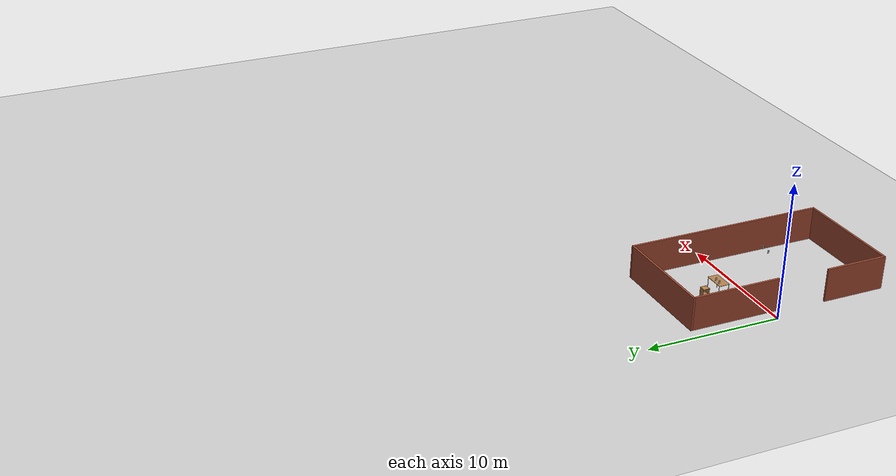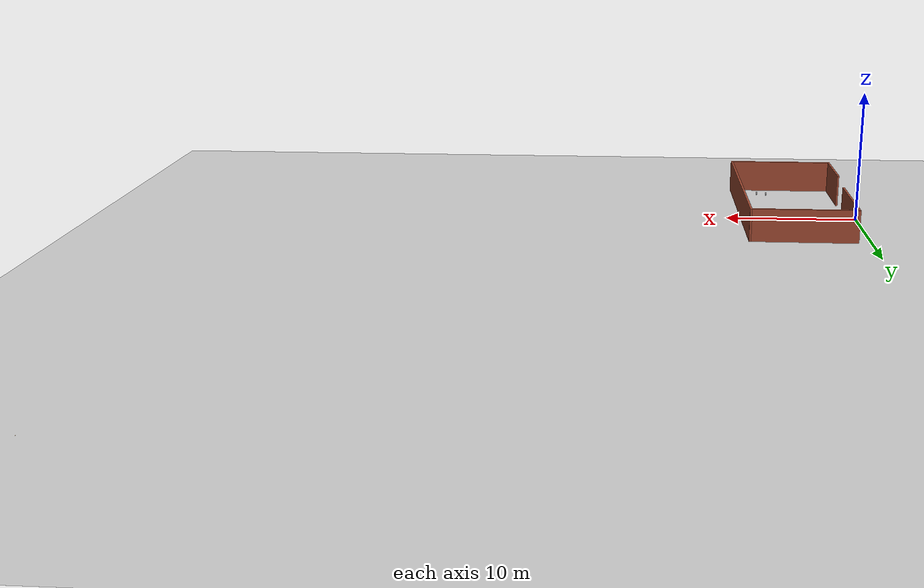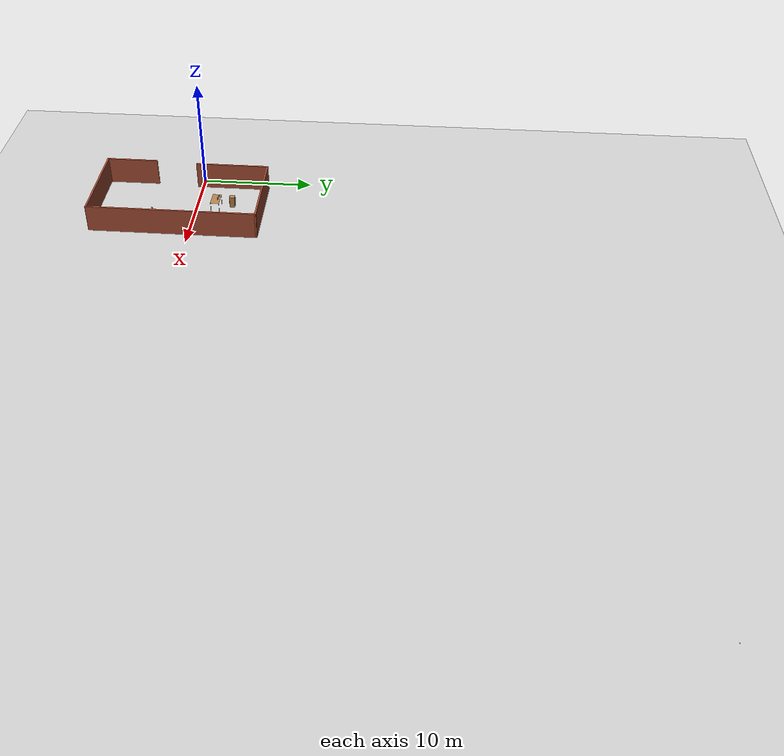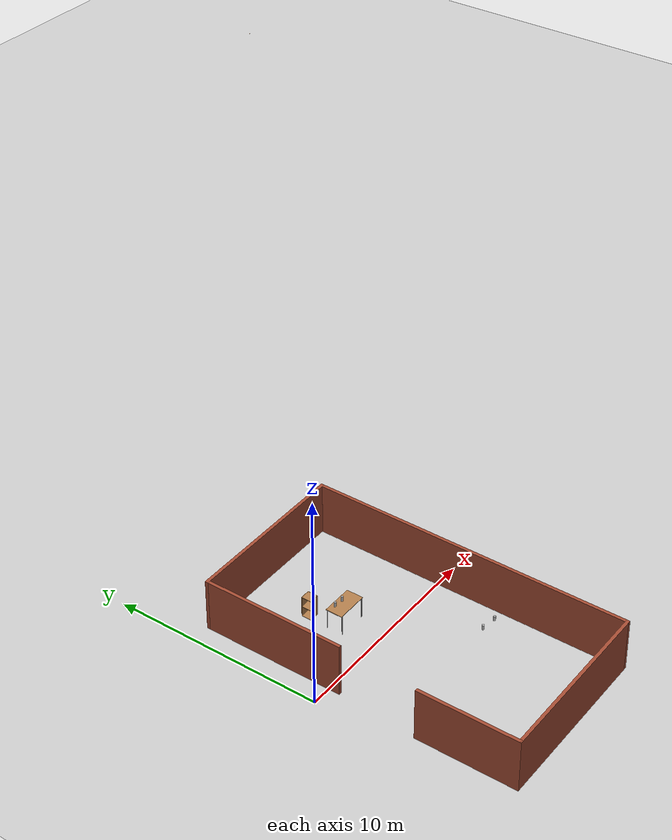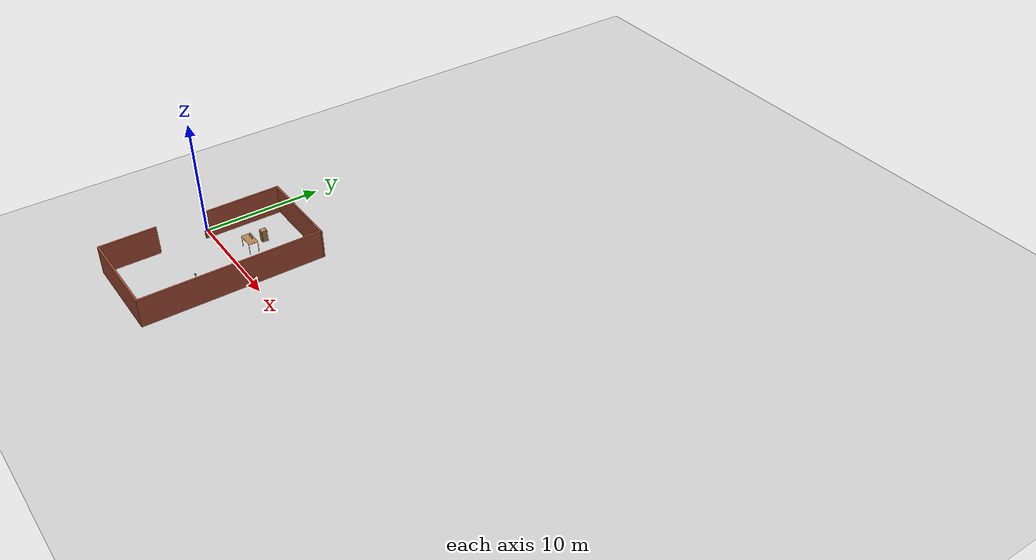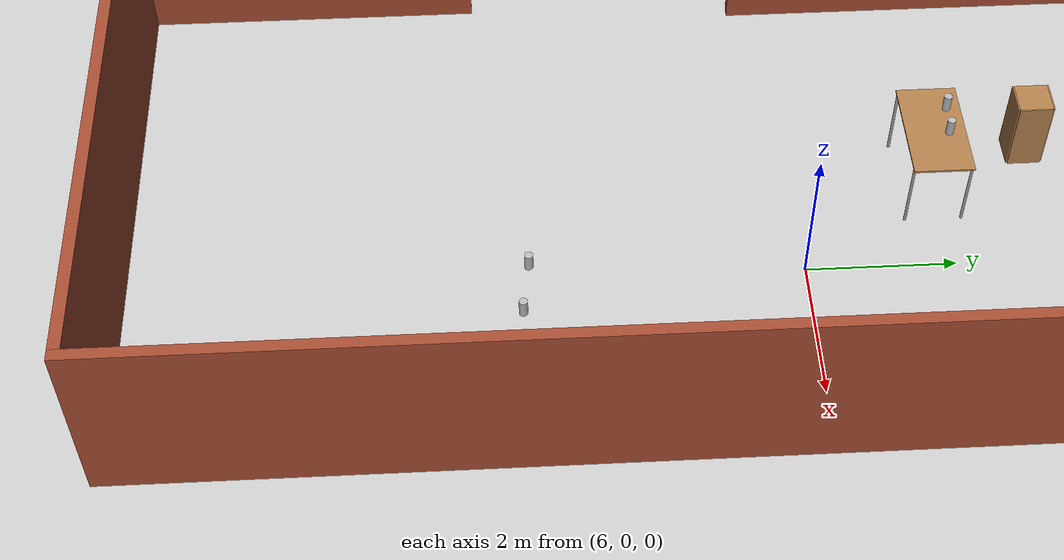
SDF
<sdf version="1.7">
 <world name="default">
  <light name="sun" type="directional">
   <pose>0 0 10 0 -0 0</pose>
   <diffuse>0.8 0.8 0.8 1</diffuse>
   <specular>0.2 0.2 0.2 1</specular>
   <attenuation>
    <range>1000</range>
    <constant>0.9</constant>
    <linear>0.01</linear>
    <quadratic>0.001</quadratic>
   </attenuation>
   <direction>-0.5 0.1 -0.9</direction>
   <spot><inner_angle>0</inner_angle><outer_angle>0</outer_angle><falloff>0</falloff></spot>
  </light>
  <model name="ground_plane">
   <static>1</static>
   <link name="link">
    <collision name="collision">
     <geometry><plane><normal>0 0 1</normal><size>100 100</size></plane></geometry>
     <surface><friction><ode><mu>100</mu><mu2>50</mu2></ode></friction></surface>
    </collision>
    <visual name="visual">
     <cast_shadows>0</cast_shadows>
     <geometry><plane><normal>0 0 1</normal><size>100 100</size></plane></geometry>
     <material>
      <script><uri>file://media/materials/scripts/gazebo.material</uri><name>Gazebo/Grey</name></script>
     </material>
    </visual>
   </link>
  </model>
  <gravity>0 0 -9.8</gravity>
  <magnetic_field>6e-06 2.3e-05 -4.2e-05</magnetic_field>
  <atmosphere type="adiabatic"/>
  <physics type="ode">
   <max_step_size>0.001</max_step_size>
   <real_time_factor>1</real_time_factor>
   <real_time_update_rate>1000</real_time_update_rate>
  </physics>
  <scene><ambient>0.4 0.4 0.4 1</ambient><background>0.7 0.7 0.7 1</background><shadows>1</shadows></scene>
  <audio><device>default</device></audio>
  <spherical_coordinates>
   <surface_model>EARTH_WGS84</surface_model>
   <latitude_deg>0</latitude_deg>
   <longitude_deg>0</longitude_deg>
   <elevation>0</elevation>
   <heading_deg>0</heading_deg>
  </spherical_coordinates>
  <model name="wooden_peg">
   <link name="link">
    <pose>0 0 0.04 0 -0 0</pose>
    <inertial>
     <mass>0.0175</mass>
     <inertia>
      <ixx>9.74923e-06</ixx>
      <ixy>0</ixy>
      <ixz>0</ixz>
      <iyy>9.74923e-06</iyy>
      <iyz>0</iyz>
      <izz>8.31797e-07</izz>
     </inertia>
    </inertial>
    <collision name="collision">
     <geometry><cylinder><radius>0.00975</radius><length>0.08</length></cylinder></geometry>
     <surface>
      <contact>
       <poissons_ratio>0.347</poissons_ratio>
       <elastic_modulus>8.8e+09</elastic_modulus>
       <ode><kp>100000</kp><kd>100</kd><max_vel>100</max_vel><min_depth>0.001</min_depth></ode>
      </contact>
      <friction>
       <torsional>
        <coefficient>1</coefficient>
        <use_patch_radius>0</use_patch_radius>
        <surface_radius>0.01</surface_radius>
       </torsional>
      </friction>
     </surface>
    </collision>
    <visual name="visual">
     <geometry><cylinder><radius>0.00975</radius><length>0.08</length></cylinder></geometry>
     <material>
      <script><uri>file://media/materials/scripts/gazebo.material</uri><name>Gazebo/Wood</name></script>
     </material>
    </visual>
   </link>
   <pose>47.6454 40.691 0.008749 -1.5708 0.851579 -0.863765</pose>
  </model>
  <model name="cabinet_0">
   <static>1</static>
   <link name="cabinet_bottom_plate">
    <inertial>
     <pose>0 0 -1 0 -0 0</pose>
     <inertia><ixx>2.05</ixx><ixy>0</ixy><ixz>0</ixz><iyy>2.05</iyy><iyz>0</iyz><izz>2.05</izz></inertia>
     <mass>25</mass>
    </inertial>
    <collision name="cabinet_bottom_plate_geom">
     <pose>0 0 0.01 0 -0 0</pose>
     <geometry><box><size>0.45 0.45 0.02</size></box></geometry>
    </collision>
    <visual name="cabinet_bottom_plate_geom_visual">
     <pose>0 0 0.01 0 -0 0</pose>
     <geometry><box><size>0.45 0.45 0.02</size></box></geometry>
     <material>
      <script><uri>file://media/materials/scripts/gazebo.material</uri><name>Gazebo/Wood</name></script>
     </material>
    </visual>
    <collision name="cabinet_bottom_plate_geom_cabinet_back_plate">
     <pose>0.235 0 0.51 0 -0 0</pose>
     <geometry><box><size>0.02 0.45 1.02</size></box></geometry>
    </collision>
    <visual name="cabinet_bottom_plate_geom_cabinet_back_plate_visual">
     <pose>0.235 0 0.51 0 -0 0</pose>
     <geometry><box><size>0.02 0.45 1.02</size></box></geometry>
     <material>
      <script><uri>file://media/materials/scripts/gazebo.material</uri><name>Gazebo/Wood</name></script>
     </material>
    </visual>
    <collision name="cabinet_bottom_plate_geom_cabinet_left_plate">
     <pose>0 0.235 0.51 0 -0 0</pose>
     <geometry><box><size>0.45 0.02 1.02</size></box></geometry>
    </collision>
    <visual name="cabinet_bottom_plate_geom_cabinet_left_plate_visual">
     <pose>0 0.235 0.51 0 -0 0</pose>
     <geometry><box><size>0.45 0.02 1.02</size></box></geometry>
     <material>
      <script><uri>file://media/materials/scripts/gazebo.material</uri><name>Gazebo/Wood</name></script>
     </material>
    </visual>
    <collision name="cabinet_bottom_plate_geom_cabinet_middle_plate">
     <pose>0 0 0.51 0 -0 0</pose>
     <geometry><box><size>0.45 0.45 0.02</size></box></geometry>
    </collision>
    <visual name="cabinet_bottom_plate_geom_cabinet_middle_plate_visual">
     <pose>0 0 0.51 0 -0 0</pose>
     <geometry><box><size>0.45 0.45 0.02</size></box></geometry>
     <material>
      <script><uri>file://media/materials/scripts/gazebo.material</uri><name>Gazebo/Wood</name></script>
     </material>
    </visual>
    <collision name="cabinet_bottom_plate_geom_cabinet_right_plate">
     <pose>0 -0.235 0.51 0 -0 0</pose>
     <geometry><box><size>0.45 0.02 1.02</size></box></geometry>
    </collision>
    <visual name="cabinet_bottom_plate_geom_cabinet_right_plate_visual">
     <pose>0 -0.235 0.51 0 -0 0</pose>
     <geometry><box><size>0.45 0.02 1.02</size></box></geometry>
     <material>
      <script><uri>file://media/materials/scripts/gazebo.material</uri><name>Gazebo/Wood</name></script>
     </material>
    </visual>
    <collision name="cabinet_bottom_plate_geom_cabinet_top_plate">
     <pose>0 0 1.01 0 -0 0</pose>
     <geometry><box><size>0.45 0.45 0.02</size></box></geometry>
    </collision>
    <visual name="cabinet_bottom_plate_geom_cabinet_top_plate_visual">
     <pose>0 0 1.01 0 -0 0</pose>
     <geometry><box><size>0.45 0.45 0.02</size></box></geometry>
     <material>
      <script><uri>file://media/materials/scripts/gazebo.material</uri><name>Gazebo/Wood</name></script>
     </material>
    </visual>
   </link>
   <pose>4.01457 3.25151 0 0 -0 0</pose>
  </model>
  <model name="table_0">
   <static>1</static>
   <link name="link">
    <collision name="surface">
     <pose>0 0 1 0 -0 0</pose>
     <geometry><box><size>1.5 0.8 0.03</size></box></geometry>
     <surface><friction><ode><mu>0.6</mu><mu2>0.6</mu2></ode></friction></surface>
    </collision>
    <visual name="visual1">
     <pose>0 0 1 0 -0 0</pose>
     <geometry><box><size>1.5 0.8 0.03</size></box></geometry>
     <material>
      <script><uri>file://media/materials/scripts/gazebo.material</uri><name>Gazebo/Wood</name></script>
     </material>
    </visual>
    <collision name="front_left_leg">
     <pose>0.68 0.38 0.5 0 -0 0</pose>
     <geometry><cylinder><radius>0.02</radius><length>1</length></cylinder></geometry>
    </collision>
    <visual name="front_left_leg">
     <pose>0.68 0.38 0.5 0 -0 0</pose>
     <geometry><cylinder><radius>0.02</radius><length>1</length></cylinder></geometry>
     <material>
      <script><uri>file://media/materials/scripts/gazebo.material</uri><name>Gazebo/Grey</name></script>
     </material>
    </visual>
    <collision name="front_right_leg">
     <pose>0.68 -0.38 0.5 0 -0 0</pose>
     <geometry><cylinder><radius>0.02</radius><length>1</length></cylinder></geometry>
    </collision>
    <visual name="front_right_leg">
     <pose>0.68 -0.38 0.5 0 -0 0</pose>
     <geometry><cylinder><radius>0.02</radius><length>1</length></cylinder></geometry>
     <material>
      <script><uri>file://media/materials/scripts/gazebo.material</uri><name>Gazebo/Grey</name></script>
     </material>
    </visual>
    <collision name="back_right_leg">
     <pose>-0.68 -0.38 0.5 0 -0 0</pose>
     <geometry><cylinder><radius>0.02</radius><length>1</length></cylinder></geometry>
    </collision>
    <visual name="back_right_leg">
     <pose>-0.68 -0.38 0.5 0 -0 0</pose>
     <geometry><cylinder><radius>0.02</radius><length>1</length></cylinder></geometry>
     <material>
      <script><uri>file://media/materials/scripts/gazebo.material</uri><name>Gazebo/Grey</name></script>
     </material>
    </visual>
    <collision name="back_left_leg">
     <pose>-0.68 0.38 0.5 0 -0 0</pose>
     <geometry><cylinder><radius>0.02</radius><length>1</length></cylinder></geometry>
    </collision>
    <visual name="back_left_leg">
     <pose>-0.68 0.38 0.5 0 -0 0</pose>
     <geometry><cylinder><radius>0.02</radius><length>1</length></cylinder></geometry>
     <material>
      <script><uri>file://media/materials/scripts/gazebo.material</uri><name>Gazebo/Grey</name></script>
     </material>
    </visual>
   </link>
   <pose>4.52347 1.82645 0 0 -0 0</pose>
  </model>
  <model name="beer_8">
   <link name="link">
    <pose>0 0 0.115 0 -0 0</pose>
    <inertial>
     <mass>0.39</mass>
     <inertia><ixx>0.00058</ixx><ixy>0</ixy><ixz>0</ixz><iyy>0.00058</iyy><iyz>0</iyz><izz>0.00019</izz></inertia>
    </inertial>
    <collision name="collision">
     <geometry><cylinder><radius>0.055</radius><length>0.23</length></cylinder></geometry>
    </collision>
    <visual name="visual">
     <geometry><cylinder><radius>0.055</radius><length>0.23</length></cylinder></geometry>
     <material>
      <script>
       <uri>model://beer/materials/scripts</uri>
       <uri>model://beer/materials/textures</uri>
       <name>Beer/Diffuse</name>
      </script>
     </material>
    </visual>
   </link>
   <pose>4.59601 2.00252 1.01499 1.3e-05 2.2e-05 0.022626</pose>
  </model>
  <model name="beer_9">
   <link name="link">
    <pose>0 0 0.115 0 -0 0</pose>
    <inertial>
     <mass>0.39</mass>
     <inertia><ixx>0.00058</ixx><ixy>0</ixy><ixz>0</ixz><iyy>0.00058</iyy><iyz>0</iyz><izz>0.00019</izz></inertia>
    </inertial>
    <collision name="collision">
     <geometry><cylinder><radius>0.055</radius><length>0.23</length></cylinder></geometry>
    </collision>
    <visual name="visual">
     <geometry><cylinder><radius>0.055</radius><length>0.23</length></cylinder></geometry>
     <material>
      <script>
       <uri>model://beer/materials/scripts</uri>
       <uri>model://beer/materials/textures</uri>
       <name>Beer/Diffuse</name>
      </script>
     </material>
    </visual>
   </link>
   <pose>4.15403 2.03586 1.01499 -2e-05 -5e-06 0.011583</pose>
  </model>
  <model name="beer_10">
   <link name="link">
    <pose>0 0 0.115 0 -0 0</pose>
    <inertial>
     <mass>0.39</mass>
     <inertia><ixx>0.00058</ixx><ixy>0</ixy><ixz>0</ixz><iyy>0.00058</iyy><iyz>0</iyz><izz>0.00019</izz></inertia>
    </inertial>
    <collision name="collision">
     <geometry><cylinder><radius>0.055</radius><length>0.23</length></cylinder></geometry>
    </collision>
    <visual name="visual">
     <geometry><cylinder><radius>0.055</radius><length>0.23</length></cylinder></geometry>
     <material>
      <script>
       <uri>model://beer/materials/scripts</uri>
       <uri>model://beer/materials/textures</uri>
       <name>Beer/Diffuse</name>
      </script>
     </material>
    </visual>
   </link>
   <pose>7.30837 -3.73382 0.964763 -1.4e-05 -1.6e-05 -0.002037</pose>
  </model>
  <model name="beer_11">
   <link name="link">
    <pose>0 0 0.115 0 -0 0</pose>
    <inertial>
     <mass>0.39</mass>
     <inertia><ixx>0.00058</ixx><ixy>0</ixy><ixz>0</ixz><iyy>0.00058</iyy><iyz>0</iyz><izz>0.00019</izz></inertia>
    </inertial>
    <collision name="collision">
     <geometry><cylinder><radius>0.055</radius><length>0.23</length></cylinder></geometry>
    </collision>
    <visual name="visual">
     <geometry><cylinder><radius>0.055</radius><length>0.23</length></cylinder></geometry>
     <material>
      <script>
       <uri>model://beer/materials/scripts</uri>
       <uri>model://beer/materials/textures</uri>
       <name>Beer/Diffuse</name>
      </script>
     </material>
    </visual>
   </link>
   <pose>6.57628 -3.63976 0.964753 -2.6e-05 8e-06 -0.00588</pose>
  </model>
  <model name="Untitled_0">
   <pose>4.46 -1.393 0 0 -0 0</pose>
   <link name="Wall_1">
    <collision name="Wall_1_Collision">
     <geometry><box><size>4.75 0.15 2.5</size></box></geometry>
     <pose>0 0 1.25 0 -0 0</pose>
    </collision>
    <visual name="Wall_1_Visual">
     <pose>0 0 1.25 0 -0 0</pose>
     <geometry><box><size>4.75 0.15 2.5</size></box></geometry>
     <material>
      <script><uri>file://media/materials/scripts/gazebo.material</uri><name>Gazebo/Bricks</name></script>
      <ambient>1 1 1 1</ambient>
     </material>
     <meta><layer>0</layer></meta>
    </visual>
    <pose>-3.715 -5.25 0 0 -0 -1.5708</pose>
   </link>
   <link name="Wall_2">
    <collision name="Wall_2_Collision">
     <geometry><box><size>8.25 0.15 2.5</size></box></geometry>
     <pose>0 0 1.25 0 -0 0</pose>
    </collision>
    <visual name="Wall_2_Visual">
     <pose>0 0 1.25 0 -0 0</pose>
     <geometry><box><size>8.25 0.15 2.5</size></box></geometry>
     <material>
      <script><uri>file://media/materials/scripts/gazebo.material</uri><name>Gazebo/Bricks</name></script>
      <ambient>1 1 1 1</ambient>
     </material>
     <meta><layer>0</layer></meta>
    </visual>
    <pose>0.335 -7.55 0 0 -0 0</pose>
   </link>
   <link name="Wall_3">
    <collision name="Wall_3_Collision">
     <geometry><box><size>15.25 0.15 2.5</size></box></geometry>
     <pose>0 0 1.25 0 -0 0</pose>
    </collision>
    <visual name="Wall_3_Visual">
     <pose>0 0 1.25 0 -0 0</pose>
     <geometry><box><size>15.25 0.15 2.5</size></box></geometry>
     <material>
      <script><uri>file://media/materials/scripts/gazebo.material</uri><name>Gazebo/Bricks</name></script>
      <ambient>1 1 1 1</ambient>
     </material>
     <meta><layer>0</layer></meta>
    </visual>
    <pose>4.385 -0 0 0 -0 1.5708</pose>
   </link>
   <link name="Wall_4">
    <collision name="Wall_4_Collision">
     <geometry><box><size>8 0.15 2.5</size></box></geometry>
     <pose>0 0 1.25 0 -0 0</pose>
    </collision>
    <visual name="Wall_4_Visual">
     <pose>0 0 1.25 0 -0 0</pose>
     <geometry><box><size>8 0.15 2.5</size></box></geometry>
     <material>
      <script><uri>file://media/materials/scripts/gazebo.material</uri><name>Gazebo/Bricks</name></script>
      <ambient>1 1 1 1</ambient>
     </material>
     <meta><layer>0</layer></meta>
    </visual>
    <pose>0.46 7.55 0 0 -0 3.14159</pose>
   </link>
   <link name="Wall_5">
    <collision name="Wall_5_Collision">
     <geometry><box><size>6.75 0.15 2.5</size></box></geometry>
     <pose>0 0 1.25 0 -0 0</pose>
    </collision>
    <visual name="Wall_5_Visual">
     <pose>0 0 1.25 0 -0 0</pose>
     <geometry><box><size>6.75 0.15 2.5</size></box></geometry>
     <material>
      <script><uri>file://media/materials/scripts/gazebo.material</uri><name>Gazebo/Bricks</name></script>
      <ambient>1 1 1 1</ambient>
     </material>
     <meta><layer>0</layer></meta>
    </visual>
    <pose>-3.465 4.25 0 0 -0 -1.5708</pose>
   </link>
   <static>1</static>
  </model>
 </world>
</sdf>
